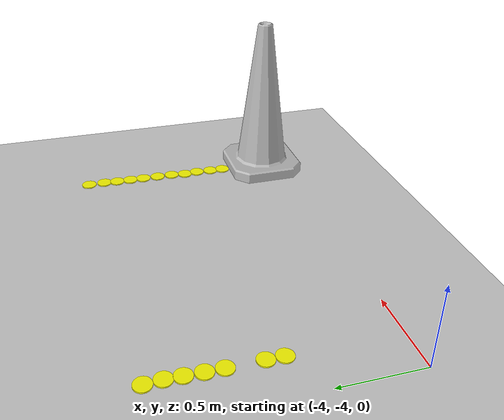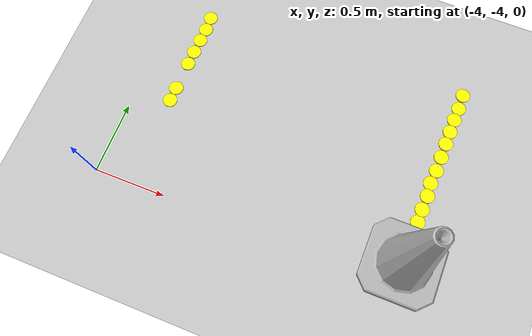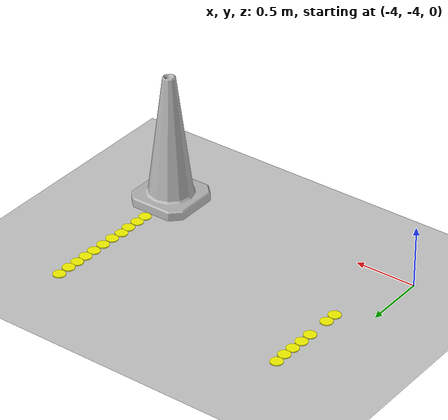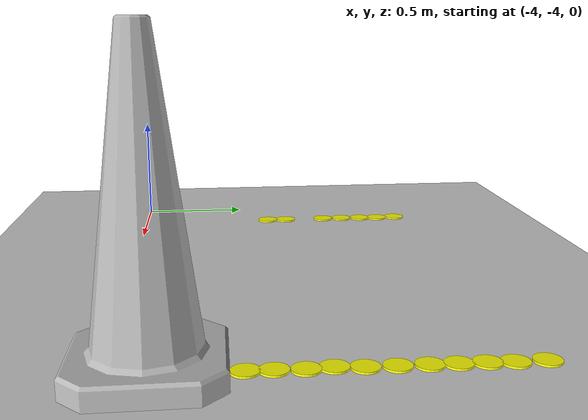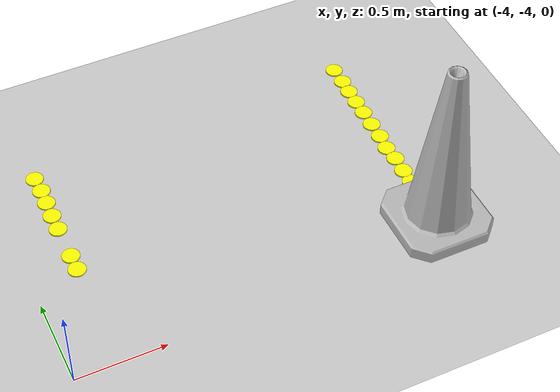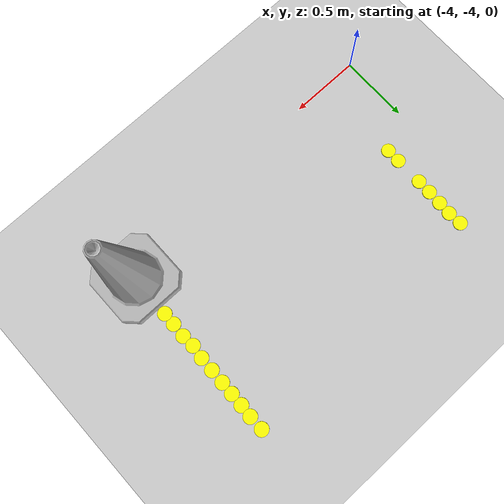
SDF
<sdf version="1.6">
 <world name="default">
  <model name="ground_plane">
   <static>1</static>
   <link name="link">
    <collision name="collision">
     <geometry><plane><normal>0 0 1</normal><size>100 100</size></plane></geometry>
     <surface><friction><ode><mu>100</mu><mu2>50</mu2></ode></friction></surface>
    </collision>
    <visual name="visual">
     <cast_shadows>0</cast_shadows>
     <geometry><plane><normal>0 0 1</normal><size>100 100</size></plane></geometry>
     <material>
      <script><uri>file://media/materials/scripts/gazebo.material</uri><name>Gazebo/Grey</name></script>
     </material>
    </visual>
   </link>
  </model>
  <model name="Construction Cone blue_1">
   <link name="link">
    <collision name="collision">
     <geometry>
      <mesh><scale>10 10 10</scale><uri>model://construction_cone_blue/meshes/construction_cone.dae</uri></mesh>
     </geometry>
    </collision>
    <visual name="visual">
     <geometry>
      <mesh><scale>10 10 10</scale><uri>model://construction_cone_blue/meshes/construction_cone.dae</uri></mesh>
     </geometry>
    </visual>
    <inertial>
     <inertia><ixx>1</ixx><ixy>0</ixy><ixz>0</ixz><iyy>1</iyy><iyz>0</iyz><izz>1</izz></inertia>
     <mass>1</mass>
    </inertial>
   </link>
   <pose>-1.87184 -3.84746 0.005 0 1e-06 0</pose>
  </model>
  <model name="yellow_disc_clone_0">
   <static>1</static>
   <link name="link">
    <visual name="visual">
     <geometry><cylinder><radius>0.05</radius><length>0.01</length></cylinder></geometry>
     <material><ambient>1 1 0 1</ambient><diffuse>1 1 0 1</diffuse><specular>0.5 0.5 0.5 1</specular></material>
    </visual>
    <collision name="collision">
     <geometry><cylinder><radius>0.5</radius><length>0.01</length></cylinder></geometry>
    </collision>
   </link>
   <pose>-3.74886 -3.35154 0 0 -0 0</pose>
  </model>
  <model name="yellow_disc_clone_1">
   <static>1</static>
   <link name="link">
    <visual name="visual">
     <geometry><cylinder><radius>0.05</radius><length>0.01</length></cylinder></geometry>
     <material><ambient>1 1 0 1</ambient><diffuse>1 1 0 1</diffuse><specular>0.5 0.5 0.5 1</specular></material>
    </visual>
    <collision name="collision">
     <geometry><cylinder><radius>0.5</radius><length>0.01</length></cylinder></geometry>
    </collision>
   </link>
   <pose>-3.74754 -3.25177 0 0 -0 0</pose>
  </model>
  <model name="yellow_disc_clone_3">
   <static>1</static>
   <link name="link">
    <visual name="visual">
     <geometry><cylinder><radius>0.05</radius><length>0.01</length></cylinder></geometry>
     <material><ambient>1 1 0 1</ambient><diffuse>1 1 0 1</diffuse><specular>0.5 0.5 0.5 1</specular></material>
    </visual>
    <collision name="collision">
     <geometry><cylinder><radius>0.5</radius><length>0.01</length></cylinder></geometry>
    </collision>
   </link>
   <pose>-3.74733 -3.04752 0 0 -0 0</pose>
  </model>
  <model name="yellow_disc_clone_4">
   <static>1</static>
   <link name="link">
    <visual name="visual">
     <geometry><cylinder><radius>0.05</radius><length>0.01</length></cylinder></geometry>
     <material><ambient>1 1 0 1</ambient><diffuse>1 1 0 1</diffuse><specular>0.5 0.5 0.5 1</specular></material>
    </visual>
    <collision name="collision">
     <geometry><cylinder><radius>0.5</radius><length>0.01</length></cylinder></geometry>
    </collision>
   </link>
   <pose>-3.74604 -2.94538 0 0 -0 0</pose>
  </model>
  <model name="yellow_disc_clone_5">
   <static>1</static>
   <link name="link">
    <visual name="visual">
     <geometry><cylinder><radius>0.05</radius><length>0.01</length></cylinder></geometry>
     <material><ambient>1 1 0 1</ambient><diffuse>1 1 0 1</diffuse><specular>0.5 0.5 0.5 1</specular></material>
    </visual>
    <collision name="collision">
     <geometry><cylinder><radius>0.5</radius><length>0.01</length></cylinder></geometry>
    </collision>
   </link>
   <pose>-3.74236 -2.84321 0 0 -0 0</pose>
  </model>
  <model name="yellow_disc_clone_6">
   <static>1</static>
   <link name="link">
    <visual name="visual">
     <geometry><cylinder><radius>0.05</radius><length>0.01</length></cylinder></geometry>
     <material><ambient>1 1 0 1</ambient><diffuse>1 1 0 1</diffuse><specular>0.5 0.5 0.5 1</specular></material>
    </visual>
    <collision name="collision">
     <geometry><cylinder><radius>0.5</radius><length>0.01</length></cylinder></geometry>
    </collision>
   </link>
   <pose>-3.73862 -2.74817 0 0 -0 0</pose>
  </model>
  <model name="yellow_disc_clone_7">
   <static>1</static>
   <link name="link">
    <visual name="visual">
     <geometry><cylinder><radius>0.05</radius><length>0.01</length></cylinder></geometry>
     <material><ambient>1 1 0 1</ambient><diffuse>1 1 0 1</diffuse><specular>0.5 0.5 0.5 1</specular></material>
    </visual>
    <collision name="collision">
     <geometry><cylinder><radius>0.5</radius><length>0.01</length></cylinder></geometry>
    </collision>
   </link>
   <pose>-3.74443 -2.64848 0 0 -0 0</pose>
  </model>
  <model name="yellow_disc_clone_17">
   <static>1</static>
   <link name="link">
    <visual name="visual">
     <geometry><cylinder><radius>0.05</radius><length>0.01</length></cylinder></geometry>
     <material><ambient>1 1 0 1</ambient><diffuse>1 1 0 1</diffuse><specular>0.5 0.5 0.5 1</specular></material>
    </visual>
    <collision name="collision">
     <geometry><cylinder><radius>0.5</radius><length>0.01</length></cylinder></geometry>
    </collision>
   </link>
   <pose>-1.85661 -3.54676 0 0 -0 0</pose>
  </model>
  <model name="yellow_disc_clone_18">
   <static>1</static>
   <link name="link">
    <visual name="visual">
     <geometry><cylinder><radius>0.05</radius><length>0.01</length></cylinder></geometry>
     <material><ambient>1 1 0 1</ambient><diffuse>1 1 0 1</diffuse><specular>0.5 0.5 0.5 1</specular></material>
    </visual>
    <collision name="collision">
     <geometry><cylinder><radius>0.5</radius><length>0.01</length></cylinder></geometry>
    </collision>
   </link>
   <pose>-1.85451 -3.45472 0 0 -0 0</pose>
  </model>
  <model name="yellow_disc_clone_19">
   <static>1</static>
   <link name="link">
    <visual name="visual">
     <geometry><cylinder><radius>0.05</radius><length>0.01</length></cylinder></geometry>
     <material><ambient>1 1 0 1</ambient><diffuse>1 1 0 1</diffuse><specular>0.5 0.5 0.5 1</specular></material>
    </visual>
    <collision name="collision">
     <geometry><cylinder><radius>0.5</radius><length>0.01</length></cylinder></geometry>
    </collision>
   </link>
   <pose>-1.84945 -3.35344 0 0 -0 0</pose>
  </model>
  <model name="yellow_disc_clone_20">
   <static>1</static>
   <link name="link">
    <visual name="visual">
     <geometry><cylinder><radius>0.05</radius><length>0.01</length></cylinder></geometry>
     <material><ambient>1 1 0 1</ambient><diffuse>1 1 0 1</diffuse><specular>0.5 0.5 0.5 1</specular></material>
    </visual>
    <collision name="collision">
     <geometry><cylinder><radius>0.5</radius><length>0.01</length></cylinder></geometry>
    </collision>
   </link>
   <pose>-1.85656 -3.2615 0 0 -0 0</pose>
  </model>
  <model name="yellow_disc_clone_21">
   <static>1</static>
   <link name="link">
    <visual name="visual">
     <geometry><cylinder><radius>0.05</radius><length>0.01</length></cylinder></geometry>
     <material><ambient>1 1 0 1</ambient><diffuse>1 1 0 1</diffuse><specular>0.5 0.5 0.5 1</specular></material>
    </visual>
    <collision name="collision">
     <geometry><cylinder><radius>0.5</radius><length>0.01</length></cylinder></geometry>
    </collision>
   </link>
   <pose>-1.84532 -3.16323 0 0 -0 0</pose>
  </model>
  <model name="yellow_disc_clone_22">
   <static>1</static>
   <link name="link">
    <visual name="visual">
     <geometry><cylinder><radius>0.05</radius><length>0.01</length></cylinder></geometry>
     <material><ambient>1 1 0 1</ambient><diffuse>1 1 0 1</diffuse><specular>0.5 0.5 0.5 1</specular></material>
    </visual>
    <collision name="collision">
     <geometry><cylinder><radius>0.5</radius><length>0.01</length></cylinder></geometry>
    </collision>
   </link>
   <pose>-1.84336 -3.05892 0 0 -0 0</pose>
  </model>
  <model name="yellow_disc_clone_23">
   <static>1</static>
   <link name="link">
    <visual name="visual">
     <geometry><cylinder><radius>0.05</radius><length>0.01</length></cylinder></geometry>
     <material><ambient>1 1 0 1</ambient><diffuse>1 1 0 1</diffuse><specular>0.5 0.5 0.5 1</specular></material>
    </visual>
    <collision name="collision">
     <geometry><cylinder><radius>0.5</radius><length>0.01</length></cylinder></geometry>
    </collision>
   </link>
   <pose>-1.84139 -2.95461 0 0 -0 0</pose>
  </model>
  <model name="yellow_disc_clone_24">
   <static>1</static>
   <link name="link">
    <visual name="visual">
     <geometry><cylinder><radius>0.05</radius><length>0.01</length></cylinder></geometry>
     <material><ambient>1 1 0 1</ambient><diffuse>1 1 0 1</diffuse><specular>0.5 0.5 0.5 1</specular></material>
    </visual>
    <collision name="collision">
     <geometry><cylinder><radius>0.5</radius><length>0.01</length></cylinder></geometry>
    </collision>
   </link>
   <pose>-1.83933 -2.85951 0 0 -0 0</pose>
  </model>
  <model name="yellow_disc_clone_25">
   <static>1</static>
   <link name="link">
    <visual name="visual">
     <geometry><cylinder><radius>0.05</radius><length>0.01</length></cylinder></geometry>
     <material><ambient>1 1 0 1</ambient><diffuse>1 1 0 1</diffuse><specular>0.5 0.5 0.5 1</specular></material>
    </visual>
    <collision name="collision">
     <geometry><cylinder><radius>0.5</radius><length>0.01</length></cylinder></geometry>
    </collision>
   </link>
   <pose>-1.83727 -2.7644 0 0 -0 0</pose>
  </model>
  <model name="yellow_disc_clone_26">
   <static>1</static>
   <link name="link">
    <visual name="visual">
     <geometry><cylinder><radius>0.05</radius><length>0.01</length></cylinder></geometry>
     <material><ambient>1 1 0 1</ambient><diffuse>1 1 0 1</diffuse><specular>0.5 0.5 0.5 1</specular></material>
    </visual>
    <collision name="collision">
     <geometry><cylinder><radius>0.5</radius><length>0.01</length></cylinder></geometry>
    </collision>
   </link>
   <pose>-1.83211 -2.67233 0 0 -0 0</pose>
  </model>
  <model name="yellow_disc_clone_27">
   <static>1</static>
   <link name="link">
    <visual name="visual">
     <geometry><cylinder><radius>0.05</radius><length>0.01</length></cylinder></geometry>
     <material><ambient>1 1 0 1</ambient><diffuse>1 1 0 1</diffuse><specular>0.5 0.5 0.5 1</specular></material>
    </visual>
    <collision name="collision">
     <geometry><cylinder><radius>0.5</radius><length>0.01</length></cylinder></geometry>
    </collision>
   </link>
   <pose>-1.83325 -2.56499 0 0 -0 0</pose>
  </model>
 </world>
</sdf>
